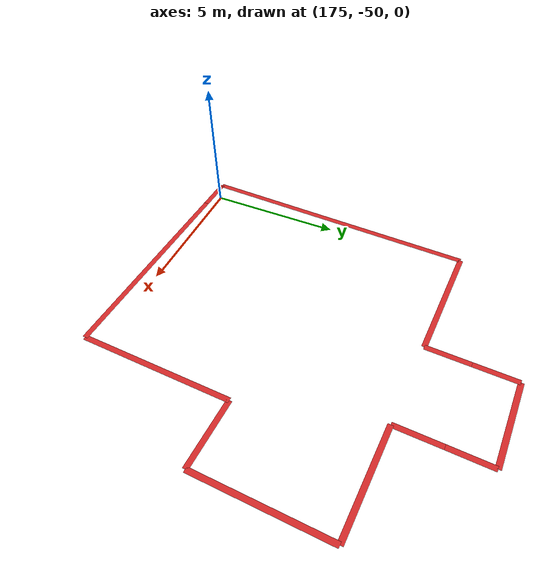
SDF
<sdf version="1.4">
 <world name="default">
  <include><uri>model://sun</uri></include>
  <model name="office_building_359548655">
   <static>true</static>
   <pose>180.877785249 -43.0651522141 0.0 0 0 0</pose>
   <link name="office_building_359548655_0">
    <collision name="office_building_359548655_0">
     <geometry><box><size>5.66921073881 0.2 0</size></box></geometry>
    </collision>
    <visual name="office_building_359548655_0">
     <geometry><box><size>5.66921073881 0.2 0</size></box></geometry>
     <material>
      <script><uri>file://media/materials/scripts/gazebo.material</uri><name>Gazebo/Red</name></script>
     </material>
    </visual>
    <pose>2.61629640673 -4.78487947025 0 0 0 -1.61002514995</pose>
   </link>
   <link name="office_building_359548655_1">
    <collision name="office_building_359548655_1">
     <geometry><box><size>2.52612039873 0.2 0</size></box></geometry>
    </collision>
    <visual name="office_building_359548655_1">
     <geometry><box><size>2.52612039873 0.2 0</size></box></geometry>
     <material>
      <script><uri>file://media/materials/scripts/gazebo.material</uri><name>Gazebo/Red</name></script>
     </material>
    </visual>
    <pose>3.98952895947 -2.00263916355 0 0 0 3.10184991779</pose>
   </link>
   <link name="office_building_359548655_2">
    <collision name="office_building_359548655_2">
     <geometry><box><size>4.82240927132 0.2 0</size></box></geometry>
    </collision>
    <visual name="office_building_359548655_2">
     <geometry><box><size>4.82240927132 0.2 0</size></box></geometry>
     <material>
      <script><uri>file://media/materials/scripts/gazebo.material</uri><name>Gazebo/Red</name></script>
     </material>
    </visual>
    <pose>5.34608834338 0.356528818121 0 0 0 -1.60999696142</pose>
   </link>
   <link name="office_building_359548655_3">
    <collision name="office_building_359548655_3">
     <geometry><box><size>3.92834976623 0.2 0</size></box></geometry>
    </collision>
    <visual name="office_building_359548655_3">
     <geometry><box><size>3.92834976623 0.2 0</size></box></geometry>
     <material>
      <script><uri>file://media/materials/scripts/gazebo.material</uri><name>Gazebo/Red</name></script>
     </material>
    </visual>
    <pose>3.4779938437 2.84474397599 0 0 0 -0.0401614574169</pose>
   </link>
   <link name="office_building_359548655_4">
    <collision name="office_building_359548655_4">
     <geometry><box><size>1.68643330316 0.2 0</size></box></geometry>
    </collision>
    <visual name="office_building_359548655_4">
     <geometry><box><size>1.68643330316 0.2 0</size></box></geometry>
     <material>
      <script><uri>file://media/materials/scripts/gazebo.material</uri><name>Gazebo/Red</name></script>
     </material>
    </visual>
    <pose>1.54875511688 3.76616368769 0 0 0 -1.61036032391</pose>
   </link>
   <link name="office_building_359548655_5">
    <collision name="office_building_359548655_5">
     <geometry><box><size>1.57179854948 0.2 0</size></box></geometry>
    </collision>
    <visual name="office_building_359548655_5">
     <geometry><box><size>1.57179854948 0.2 0</size></box></geometry>
     <material>
      <script><uri>file://media/materials/scripts/gazebo.material</uri><name>Gazebo/Red</name></script>
     </material>
    </visual>
    <pose>1.61546041095 5.39391169583 0 0 0 -1.61324832638</pose>
   </link>
   <link name="office_building_359548655_6">
    <collision name="office_building_359548655_6">
     <geometry><box><size>3.23806776579 0.2 0</size></box></geometry>
    </collision>
    <visual name="office_building_359548655_6">
     <geometry><box><size>3.23806776579 0.2 0</size></box></geometry>
     <material>
      <script><uri>file://media/materials/scripts/gazebo.material</uri><name>Gazebo/Red</name></script>
     </material>
    </visual>
    <pose>0.0309267864878 6.24004274724 0 0 0 -0.0376485213946</pose>
   </link>
   <link name="office_building_359548655_7">
    <collision name="office_building_359548655_7">
     <geometry><box><size>1.60045689969 0.2 0</size></box></geometry>
    </collision>
    <visual name="office_building_359548655_7">
     <geometry><box><size>1.60045689969 0.2 0</size></box></geometry>
     <material>
      <script><uri>file://media/materials/scripts/gazebo.material</uri><name>Gazebo/Red</name></script>
     </material>
    </visual>
    <pose>-1.62031270468 5.50144949389 0 0 0 1.52910503826</pose>
   </link>
   <link name="office_building_359548655_8">
    <collision name="office_building_359548655_8">
     <geometry><box><size>1.62911521879 0.2 0</size></box></geometry>
    </collision>
    <visual name="office_building_359548655_8">
     <geometry><box><size>1.62911521879 0.2 0</size></box></geometry>
     <material>
      <script><uri>file://media/materials/scripts/gazebo.material</uri><name>Gazebo/Red</name></script>
     </material>
    </visual>
    <pose>-1.68701814239 3.88804190426 0 0 0 1.52983928123</pose>
   </link>
   <link name="office_building_359548655_9">
    <collision name="office_building_359548655_9">
     <geometry><box><size>4.51807190082 0.2 0</size></box></geometry>
    </collision>
    <visual name="office_building_359548655_9">
     <geometry><box><size>4.51807190082 0.2 0</size></box></geometry>
     <material>
      <script><uri>file://media/materials/scripts/gazebo.material</uri><name>Gazebo/Red</name></script>
     </material>
    </visual>
    <pose>-3.97762836509 3.16378441361 0 0 0 -0.0396808801329</pose>
   </link>
   <link name="office_building_359548655_10">
    <collision name="office_building_359548655_10">
     <geometry><box><size>10.5203009199 0.2 0</size></box></geometry>
    </collision>
    <visual name="office_building_359548655_10">
     <geometry><box><size>10.5203009199 0.2 0</size></box></geometry>
     <material>
      <script><uri>file://media/materials/scripts/gazebo.material</uri><name>Gazebo/Red</name></script>
     </material>
    </visual>
    <pose>-6.44055259025 -2.00272681939 0 0 0 1.53168737199</pose>
   </link>
   <link name="office_building_359548655_11">
    <collision name="office_building_359548655_11">
     <geometry><box><size>1.31305989801 0.2 0</size></box></geometry>
    </collision>
    <visual name="office_building_359548655_11">
     <geometry><box><size>1.31305989801 0.2 0</size></box></geometry>
     <material>
      <script><uri>file://media/materials/scripts/gazebo.material</uri><name>Gazebo/Red</name></script>
     </material>
    </visual>
    <pose>-5.99016883664 -7.28394638431 0 0 0 3.10336525548</pose>
   </link>
   <link name="office_building_359548655_12">
    <collision name="office_building_359548655_12">
     <geometry><box><size>7.84530393587 0.2 0</size></box></geometry>
    </collision>
    <visual name="office_building_359548655_12">
     <geometry><box><size>7.84530393587 0.2 0</size></box></geometry>
     <material>
      <script><uri>file://media/materials/scripts/gazebo.material</uri><name>Gazebo/Red</name></script>
     </material>
    </visual>
    <pose>-1.41449592084 -7.46317086766 0 0 0 3.1022894335</pose>
   </link>
  </model>
 </world>
</sdf>
